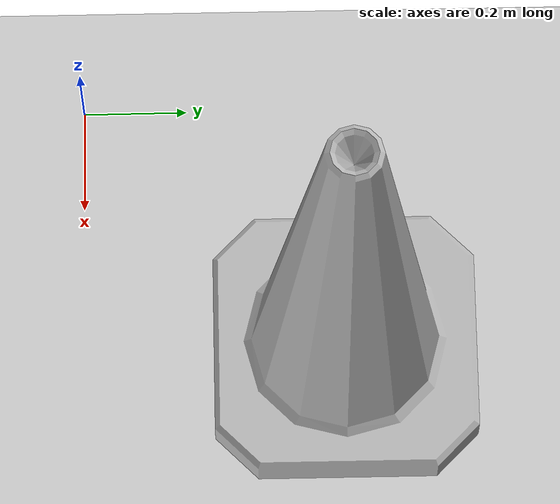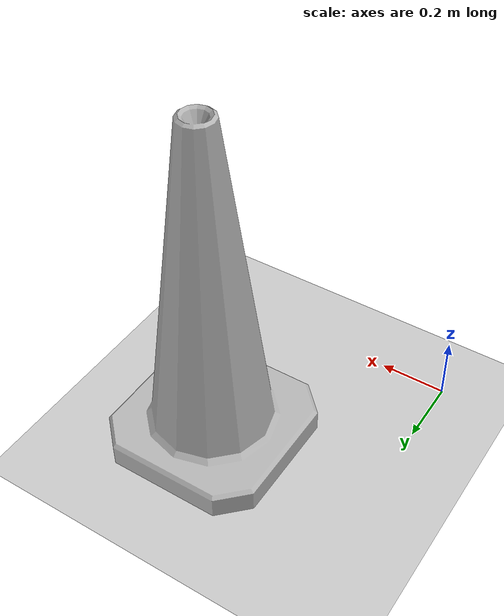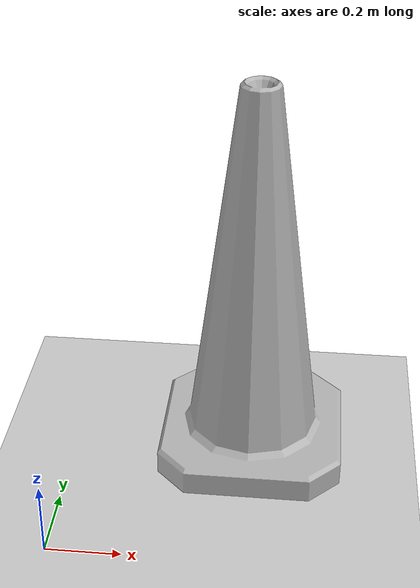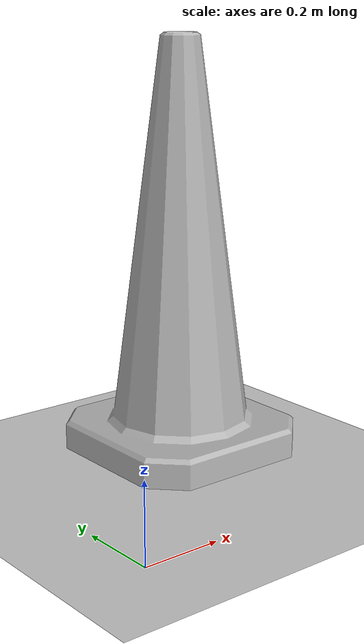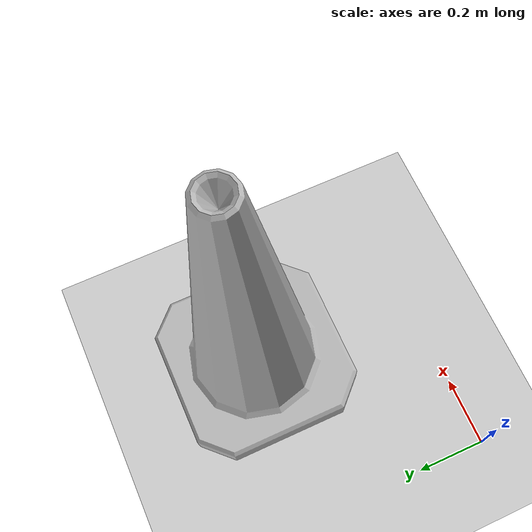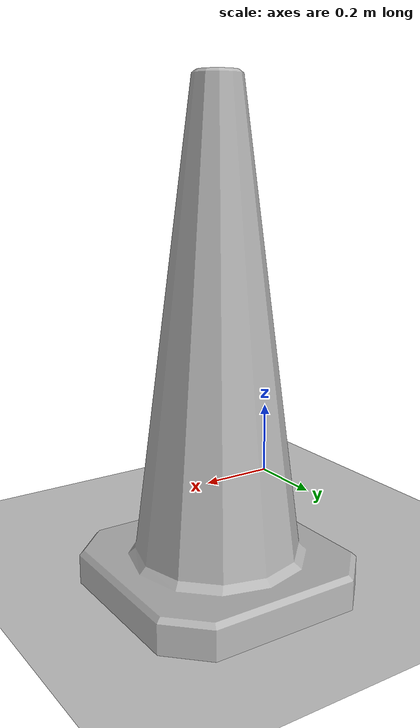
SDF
<?xml version="1.0" ?>
<sdf version="1.8">
  <world name="simple_world">
  <!-- From https://gazebosim.org/docs/latest/sdf_worlds/ -->
  <!-- Default plugins:-->
    <physics name="1ms" type="ignored">
      <max_step_size>0.001</max_step_size>
      <real_time_factor>1.0</real_time_factor>
    </physics>
    <plugin
      filename="gz-sim-physics-system"
      name="gz::sim::systems::Physics">
    </plugin>
    <plugin
      filename="gz-sim-user-commands-system"
      name="gz::sim::systems::UserCommands">
    </plugin>
    <plugin
      filename="gz-sim-scene-broadcaster-system"
      name="gz::sim::systems::SceneBroadcaster">
    </plugin>
  <!-- End of default plugins -->
  <!-- sensor plugins to enable camera -->
  <plugin
    filename="gz-sim-sensors-system"
    name="gz::sim::systems::Sensors">
    <render_engine>ogre2</render_engine>
  </plugin>
  <plugin filename="gz-sim-imu-system"
        name="gz::sim::systems::Imu">
  </plugin>
  <!-- End of sensor plugins -->

  <!--light-->
    <light type="directional" name="sun">
      <cast_shadows>true</cast_shadows>
      <pose>0 0 10 0 0 0</pose>
      <diffuse>0.8 0.8 0.8 1</diffuse>
      <specular>0.2 0.2 0.2 1</specular>
      <attenuation>
        <range>1000</range>
        <constant>0.9</constant>
        <linear>0.01</linear>
        <quadratic>0.001</quadratic>
      </attenuation>
      <direction>-0.5 0.1 -0.9</direction>
    </light>
    <model name="ground_plane">
      <static>true</static>
      <link name="link">
        <collision name="collision">
          <geometry>
              <plane>
                <normal>0 0 1</normal>
              </plane>
          </geometry>
        </collision>
        <visual name="visual">
          <geometry>
              <plane>
                <normal>0 0 1</normal>
                <size>100 100</size>
              </plane>
          </geometry>
          <material>
              <ambient>0.8 0.8 0.8 1</ambient>
              <diffuse>0.8 0.8 0.8 1</diffuse>
              <specular>0.8 0.8 0.8 1</specular>
          </material>
        </visual>
      </link>
    </model>
    <include>
        <name>Construction Cone</name>
        <pose>0.5 0.5 0 0 0 0</pose>
        <uri>model://construction_cone</uri>
    </include>
  </world>
</sdf>

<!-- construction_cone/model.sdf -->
<sdf version="1.5">
  <model name="Construction Cone">
    <link name="link">
      <collision name="collision">
        <geometry>
          <mesh>
            <scale>10 10 10</scale>
            <uri>file://isr-testbed/construction_cone/meshes/construction_cone.dae</uri>
          </mesh>
        </geometry>
      </collision>
      <visual name="visual">
        <geometry>
          <mesh>
            <scale>10 10 10</scale>
            <uri>file://isr-testbed/construction_cone/meshes/construction_cone.dae</uri>
          </mesh>
        </geometry>
      </visual>
    </link>
  </model>
</sdf>
